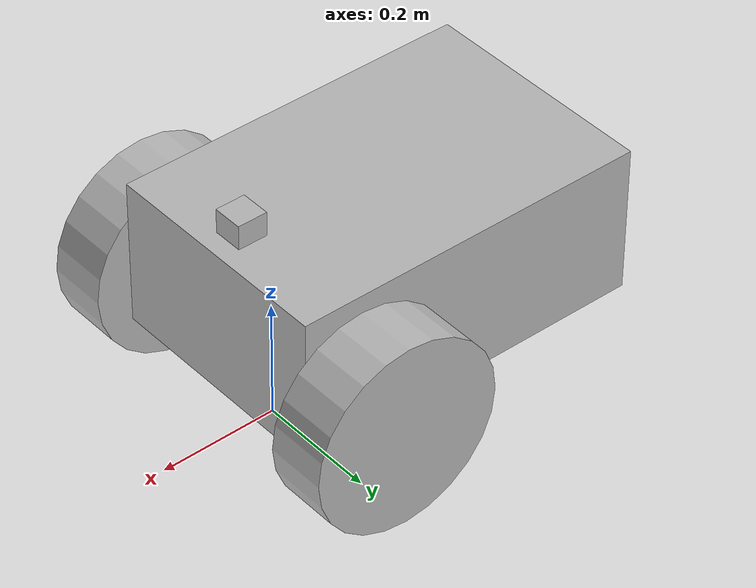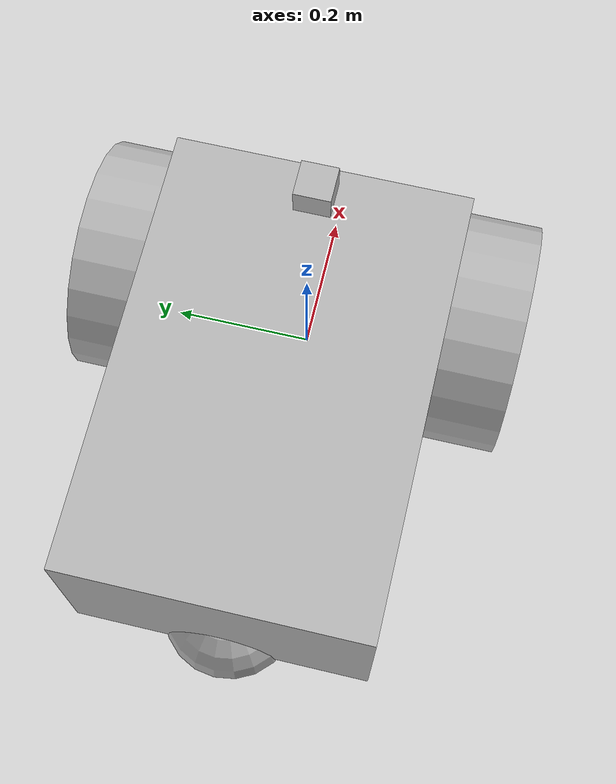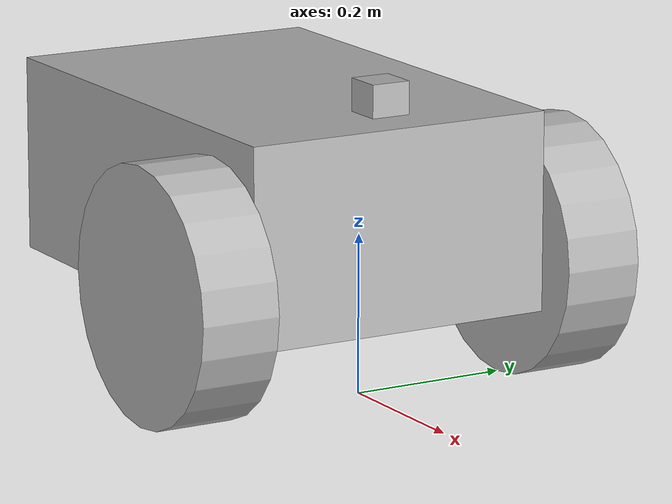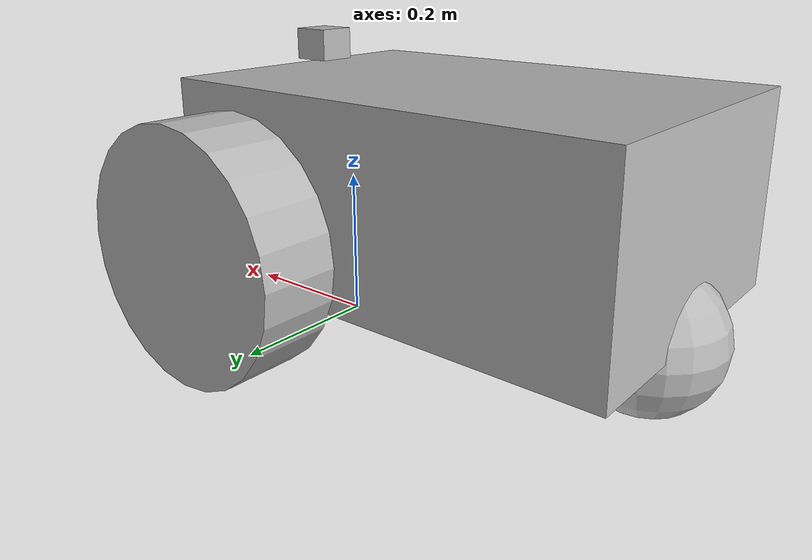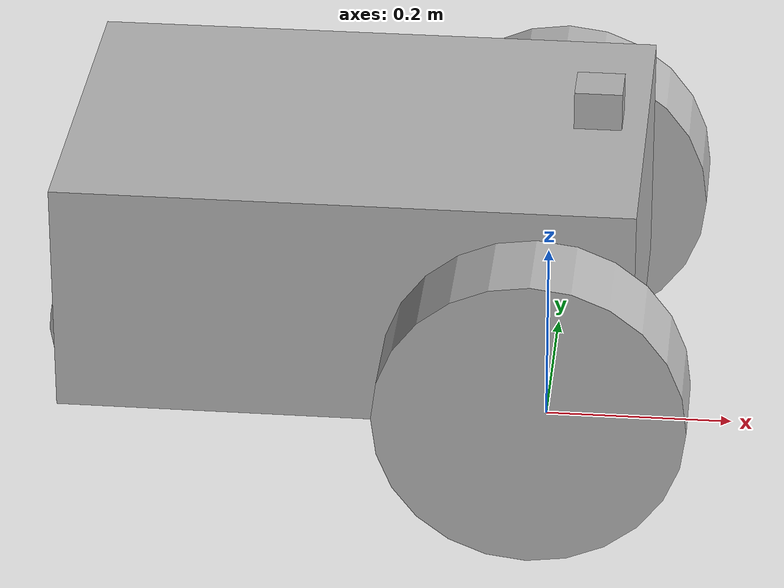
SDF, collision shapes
<?xml version="1.0"?>

<sdf version="1.6">
  <model name="ISR_M2">
    <pose>0.0 0.0 0.0 0.0 0.0 0.0</pose>

    <link name="base_footprint"/>

    <link name='base_link'>
      <pose>0.0 0.0 0.16 0.0 0.0 0.0 0.0</pose>
      <inertial>
        <mass>1</mass>
        <inertia>
          <ixx>0.166667</ixx>
          <ixy>0.0</ixy>
          <ixz>0.0</ixz>
          <iyy>0.166667</iyy>
          <iyz>0.0</iyz>
          <izz>0.166667</izz>
        </inertia>
      </inertial>
      <visual name='visual'>
        <pose>-0.2 0.0 0.065 0.0 0.0 0.0 0.0</pose>
        <geometry>
          <box>
            <size>0.6 0.4 0.25</size>
          </box>
        </geometry>
      </visual>
      <collision name='collision'>
        <pose>-0.2 0.0 0.065 0.0 0.0 0.0 0.0</pose>
        <geometry>
          <box>
            <size>0.6 0.4 0.25</size>
          </box>
        </geometry>
      </collision>
    </link>

    <link name='left_wheel'>
      <pose>0.0 0.25 0.16 1.5707 0 0</pose>
      <inertial>
        <mass>1</mass>
        <inertia>
          <ixx>0.145833</ixx>
          <ixy>0</ixy>
          <ixz>0</ixz>
          <iyy>0.145833</iyy>
          <iyz>0</iyz>
          <izz>0.125</izz>
        </inertia>
      </inertial>
      <visual name='visual'>
        <geometry>
          <cylinder>
            <radius>0.16</radius>
            <length>0.10</length>
          </cylinder>
        </geometry>
      </visual>
      <collision name='collision'>
        <geometry>
          <cylinder>
            <radius>0.16</radius>
            <length>0.10</length>
          </cylinder>
        </geometry>
        <surface>
          <friction>
            <ode>
              <mu>1</mu>
              <mu2>1</mu2>
              <slip1>0</slip1>
              <slip2>0</slip2>
            </ode>
          </friction>
          <contact>
            <ode>
              <soft_cfm>0</soft_cfm>
              <soft_erp>0.2</soft_erp>
              <kp>1e+13</kp>
              <kd>1</kd>
              <max_vel>0.01</max_vel>
              <min_depth>0.01</min_depth>
            </ode>
          </contact>
        </surface>
      </collision>
    </link>

    <link name='right_wheel'>
      <pose>0.0 -0.25 0.16 1.5707 0 0</pose>
      <inertial>
        <mass>1</mass>
        <inertia>
          <ixx>0.145833</ixx>
          <ixy>0</ixy>
          <ixz>0</ixz>
          <iyy>0.145833</iyy>
          <iyz>0</iyz>
          <izz>0.125</izz>
        </inertia>
      </inertial>
      <visual name='visual'>
        <geometry>
          <cylinder>
            <radius>0.16</radius>
            <length>0.10</length>
          </cylinder>
        </geometry>
      </visual>
      <collision name='collision'>
        <geometry>
          <cylinder>
            <radius>0.16</radius>
            <length>0.10</length>
          </cylinder>
        </geometry>
        <surface>
          <friction>
            <ode>
              <mu>1</mu>
              <mu2>1</mu2>
              <slip1>0</slip1>
              <slip2>0</slip2>
            </ode>
          </friction>
          <contact>
            <ode>
              <soft_cfm>0</soft_cfm>
              <soft_erp>0.2</soft_erp>
              <kp>1e+13</kp>
              <kd>1</kd>
              <max_vel>0.01</max_vel>
              <min_depth>0.01</min_depth>
            </ode>
          </contact>
        </surface>
      </collision>
    </link>

    <link name='caster'>
      <pose>-0.45 0 0.09 0 -0 0</pose>
      <inertial>
        <mass>1</mass>
        <inertia>
          <ixx>0.1</ixx>
          <ixy>0</ixy>
          <ixz>0</ixz>
          <iyy>0.1</iyy>
          <iyz>0</iyz>
          <izz>0.1</izz>
        </inertia>
      </inertial>
      <visual name='visual'>
        <geometry>
          <sphere>
            <radius>0.09</radius>
          </sphere>
        </geometry>
      </visual>
      <collision name='collision'>
        <geometry>
          <sphere>
            <radius>0.09</radius>
          </sphere>
        </geometry>
      </collision>
    </link>

    <link name='hokuyo'>
      <pose>0.05 0 0.38 0 0 0</pose>
      <inertial>
        <mass>0.1</mass>
      </inertial>

      <visual name='visual'>
        <geometry>
          <mesh>
            <uri>model://hokuyo/meshes/hokuyo.dae</uri>
          </mesh>
        </geometry>
      </visual>

      <collision name='collision-base'>
        <geometry>
          <box>
            <size>0.05 0.05 0.041</size>
          </box>
        </geometry>
      </collision>

      <collision name='collision-top'>
        <geometry>
          <cylinder>
            <radius>0.021</radius>
            <length>0.029</length>
          </cylinder>
        </geometry>
      </collision>

      <sensor name='laser' type='ray'>
        <always_on>true</always_on>
        <visualize>false</visualize>
        <pose>0 0 0 0 0 0</pose>
        <update_rate>10</update_rate>
        <ray>
          <scan>
            <horizontal>
              <samples>640</samples>
              <resolution>1</resolution>
              <min_angle>-2.26889</min_angle>
              <max_angle>2.2689</max_angle>
            </horizontal>
          </scan>
          <range>
            <min>0.08</min>
            <max>10</max>
            <resolution>0.01</resolution>
          </range>
        </ray>
        <plugin name='laserscan' filename='libgazebo_ros_ray_sensor.so'>
          <ros>
            <remapping>~/out:=scan</remapping>
          </ros>
          <output_type>sensor_msgs/LaserScan</output_type>
          <!-- Manual -->
          <frame_name>Robot2/hokuyo</frame_name>
        </plugin>
      </sensor>
    </link>

    <joint name="base_joint" type="fixed">
      <parent>base_footprint</parent>
      <child>base_link</child>
      <pose>0.0 0.0 0.0 0.0 0.0 0.0</pose>
    </joint>

    <joint name='left_wheel_joint' type='revolute'>
      <parent>base_link</parent>
      <child>left_wheel</child>
      <axis>
        <xyz>0 0 -1</xyz>
        <limit>
          <lower>-1.79769e+308</lower>
          <upper>1.79769e+308</upper>
        </limit>
      </axis>
    </joint>

    <joint name='right_wheel_joint' type='revolute'>
      <parent>base_link</parent>
      <child>right_wheel</child>
      <axis>
        <xyz>0 0 -1</xyz>
        <limit>
          <lower>-1.79769e+308</lower>
          <upper>1.79769e+308</upper>
        </limit>
      </axis>
    </joint>

    <joint name='caster_wheel' type='ball'>
      <parent>base_link</parent>
      <child>caster</child>
    </joint>

    <joint name='hokuyo_joint' type='fixed'>
      <parent>base_link</parent>
      <child>hokuyo</child>
      <pose>0.05 0 0.38 0 0 0</pose>
      <axis>
        <xyz>0 0 1</xyz>
      </axis>
    </joint>

    <plugin name='diff_drive' filename='libgazebo_ros_diff_drive.so'>

      <!-- wheels -->
      <left_joint>left_wheel_joint</left_joint>
      <right_joint>right_wheel_joint</right_joint>

      <!-- kinematics -->
      <wheel_separation>0.5</wheel_separation>
      <wheel_diameter>0.32</wheel_diameter>

      <!-- limits -->
      <max_wheel_torque>20</max_wheel_torque>
      <max_wheel_acceleration>1.0</max_wheel_acceleration>

      <!-- output -->
      <publish_odom>true</publish_odom>
      <publish_odom_tf>false</publish_odom_tf>
      <publish_wheel_tf>false</publish_wheel_tf>

      <odometry_topic>odom</odometry_topic>
      <!-- Manual -->
      <odometry_frame>Robot2/odom</odometry_frame>
      <robot_base_frame>Robot2/base_footprint</robot_base_frame>

    </plugin>

    <plugin name="ISR_M2_joint_state" filename = "libgazebo_ros_joint_state_publisher.so">
      <ros>
        <remapping>~/out:=joint_states</remapping>
      </ros>
      <joint_name>Robot2/left_wheel_joint</joint_name>
      <joint_name>Robot2/right_wheel_joint</joint_name>
    </plugin>

  </model>
</sdf>
